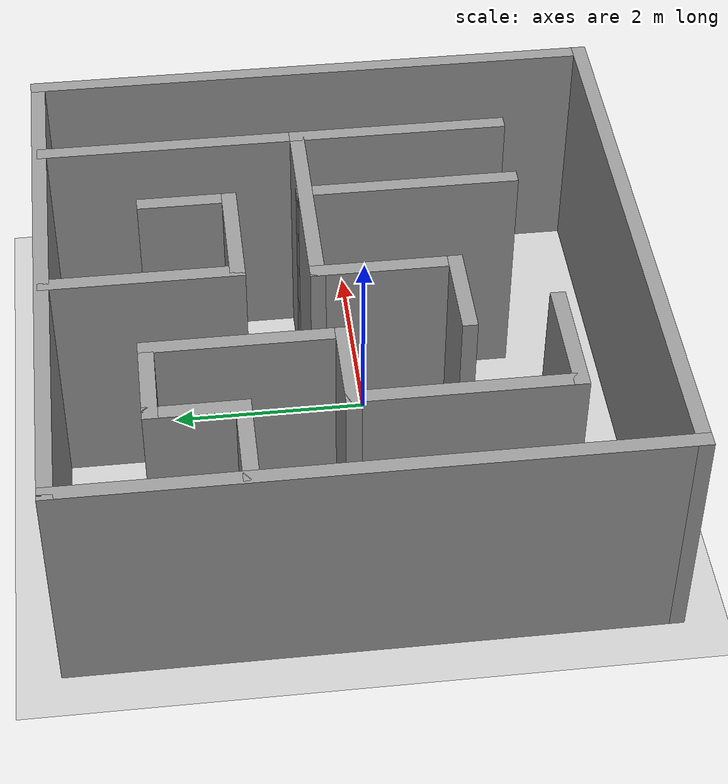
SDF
<sdf version="1.6">
 <world name="default">
  <light name="sun" type="directional">
   <pose>0 0 10 0 -0 0</pose>
   <diffuse>0.8 0.8 0.8 1</diffuse>
   <specular>0.2 0.2 0.2 1</specular>
   <attenuation>
    <range>1000</range>
    <constant>0.9</constant>
    <linear>0.01</linear>
    <quadratic>0.001</quadratic>
   </attenuation>
   <direction>-0.5 0.1 -0.9</direction>
  </light>
  <model name="ground_plane">
   <static>1</static>
   <link name="link">
    <collision name="collision">
     <geometry><plane><normal>0 0 1</normal><size>100 100</size></plane></geometry>
     <surface>
      <contact><collide_bitmask>65535</collide_bitmask></contact>
      <friction><ode><mu>100</mu><mu2>50</mu2></ode></friction>
     </surface>
    </collision>
    <visual name="visual">
     <cast_shadows>0</cast_shadows>
     <geometry><plane><normal>0 0 1</normal><size>100 100</size></plane></geometry>
     <material>
      <script><uri>file://media/materials/scripts/gazebo.material</uri><name>Gazebo/Grey</name></script>
     </material>
    </visual>
   </link>
  </model>
  <gravity>0 0 -9.8</gravity>
  <magnetic_field>6e-06 2.3e-05 -4.2e-05</magnetic_field>
  <atmosphere type="adiabatic"/>
  <physics name="default_physics" default="0" type="ode">
   <max_step_size>0.001</max_step_size>
   <real_time_factor>1</real_time_factor>
   <real_time_update_rate>1000</real_time_update_rate>
  </physics>
  <scene><ambient>0.4 0.4 0.4 1</ambient><background>0.7 0.7 0.7 1</background><shadows>1</shadows></scene>
  <audio><device>default</device></audio>
  <spherical_coordinates>
   <surface_model>EARTH_WGS84</surface_model>
   <latitude_deg>0</latitude_deg>
   <longitude_deg>0</longitude_deg>
   <elevation>0</elevation>
   <heading_deg>0</heading_deg>
  </spherical_coordinates>
  <model name="maze_2">
   <pose>-0.268498 0.259827 0 0 -0 0</pose>
   <link name="Wall_0">
    <collision name="Wall_0_Collision">
     <geometry><box><size>6 0.15 2.5</size></box></geometry>
     <pose>0 0 1.25 0 -0 0</pose>
    </collision>
    <visual name="Wall_0_Visual">
     <pose>0 0 1.25 0 -0 0</pose>
     <geometry><box><size>6 0.15 2.5</size></box></geometry>
     <material>
      <script><uri>file://media/materials/scripts/gazebo.material</uri><name>Gazebo/Grey</name></script>
      <ambient>1 1 1 1</ambient>
     </material>
     <meta><layer>0</layer></meta>
    </visual>
    <pose>-2.925 0 0 0 -0 1.5708</pose>
   </link>
   <link name="Wall_1">
    <collision name="Wall_1_Collision">
     <geometry><box><size>6 0.15 2.5</size></box></geometry>
     <pose>0 0 1.25 0 -0 0</pose>
    </collision>
    <visual name="Wall_1_Visual">
     <pose>0 0 1.25 0 -0 0</pose>
     <geometry><box><size>6 0.15 2.5</size></box></geometry>
     <material>
      <script><uri>file://media/materials/scripts/gazebo.material</uri><name>Gazebo/Grey</name></script>
      <ambient>1 1 1 1</ambient>
     </material>
     <meta><layer>0</layer></meta>
    </visual>
    <pose>0 2.925 0 0 -0 0</pose>
   </link>
   <link name="Wall_10">
    <collision name="Wall_10_Collision">
     <geometry><box><size>2 0.15 2.5</size></box></geometry>
     <pose>0 0 1.25 0 -0 0</pose>
    </collision>
    <visual name="Wall_10_Visual">
     <pose>0 0 1.25 0 -0 0</pose>
     <geometry><box><size>2 0.15 2.5</size></box></geometry>
     <material>
      <script><uri>file://media/materials/scripts/gazebo.material</uri><name>Gazebo/Grey</name></script>
      <ambient>1 1 1 1</ambient>
     </material>
     <meta><layer>0</layer></meta>
    </visual>
    <pose>-1.19718 1.04673 0 0 -0 -1.5708</pose>
   </link>
   <link name="Wall_11">
    <collision name="Wall_11_Collision">
     <geometry><box><size>1 0.15 2.5</size></box></geometry>
     <pose>0 0 1.25 0 -0 0</pose>
    </collision>
    <visual name="Wall_11_Visual">
     <pose>0 0 1.25 0 -0 0</pose>
     <geometry><box><size>1 0.15 2.5</size></box></geometry>
     <material>
      <script><uri>file://media/materials/scripts/gazebo.material</uri><name>Gazebo/Grey</name></script>
      <ambient>1 1 1 1</ambient>
     </material>
     <meta><layer>0</layer></meta>
    </visual>
    <pose>-1.62218 0.121735 0 0 -0 3.14159</pose>
   </link>
   <link name="Wall_12">
    <collision name="Wall_12_Collision">
     <geometry><box><size>2.25 0.15 2.5</size></box></geometry>
     <pose>0 0 1.25 0 -0 0</pose>
    </collision>
    <visual name="Wall_12_Visual">
     <pose>0 0 1.25 0 -0 0</pose>
     <geometry><box><size>2.25 0.15 2.5</size></box></geometry>
     <material>
      <script><uri>file://media/materials/scripts/gazebo.material</uri><name>Gazebo/Grey</name></script>
      <ambient>1 1 1 1</ambient>
     </material>
     <meta><layer>0</layer></meta>
    </visual>
    <pose>-2.04718 -0.928265 0 0 -0 -1.5708</pose>
   </link>
   <link name="Wall_13">
    <collision name="Wall_13_Collision">
     <geometry><box><size>1.25 0.15 2.5</size></box></geometry>
     <pose>0 0 1.25 0 -0 0</pose>
    </collision>
    <visual name="Wall_13_Visual">
     <pose>0 0 1.25 0 -0 0</pose>
     <geometry><box><size>1.25 0.15 2.5</size></box></geometry>
     <material>
      <script><uri>file://media/materials/scripts/gazebo.material</uri><name>Gazebo/Grey</name></script>
      <ambient>1 1 1 1</ambient>
     </material>
     <meta><layer>0</layer></meta>
    </visual>
    <pose>-1.49718 -1.97826 0 0 -0 0</pose>
   </link>
   <link name="Wall_15">
    <collision name="Wall_15_Collision">
     <geometry><box><size>2 0.15 2.5</size></box></geometry>
     <pose>0 0 1.25 0 -0 0</pose>
    </collision>
    <visual name="Wall_15_Visual">
     <pose>0 0 1.25 0 -0 0</pose>
     <geometry><box><size>2 0.15 2.5</size></box></geometry>
     <material>
      <script><uri>file://media/materials/scripts/gazebo.material</uri><name>Gazebo/Grey</name></script>
      <ambient>1 1 1 1</ambient>
     </material>
     <meta><layer>0</layer></meta>
    </visual>
    <pose>-0.221201 1.96323 0 0 -0 -1.5708</pose>
   </link>
   <link name="Wall_2">
    <collision name="Wall_2_Collision">
     <geometry><box><size>6 0.15 2.5</size></box></geometry>
     <pose>0 0 1.25 0 -0 0</pose>
    </collision>
    <visual name="Wall_2_Visual">
     <pose>0 0 1.25 0 -0 0</pose>
     <geometry><box><size>6 0.15 2.5</size></box></geometry>
     <material>
      <script><uri>file://media/materials/scripts/gazebo.material</uri><name>Gazebo/Grey</name></script>
      <ambient>1 1 1 1</ambient>
     </material>
     <meta><layer>0</layer></meta>
    </visual>
    <pose>2.925 0 0 0 -0 -1.5708</pose>
   </link>
   <link name="Wall_20">
    <collision name="Wall_20_Collision">
     <geometry><box><size>1.25 0.15 2.5</size></box></geometry>
     <pose>0 0 1.25 0 -0 0</pose>
    </collision>
    <visual name="Wall_20_Visual">
     <pose>0 0 1.25 0 -0 0</pose>
     <geometry><box><size>1.25 0.15 2.5</size></box></geometry>
     <material>
      <script><uri>file://media/materials/scripts/gazebo.material</uri><name>Gazebo/Grey</name></script>
      <ambient>1 1 1 1</ambient>
     </material>
     <meta><layer>0</layer></meta>
    </visual>
    <pose>0.328798 1.03823 0 0 -0 0</pose>
   </link>
   <link name="Wall_21">
    <collision name="Wall_21_Collision">
     <geometry><box><size>1 0.15 2.5</size></box></geometry>
     <pose>0 0 1.25 0 -0 0</pose>
    </collision>
    <visual name="Wall_21_Visual">
     <pose>0 0 1.25 0 -0 0</pose>
     <geometry><box><size>1 0.15 2.5</size></box></geometry>
     <material>
      <script><uri>file://media/materials/scripts/gazebo.material</uri><name>Gazebo/Grey</name></script>
      <ambient>1 1 1 1</ambient>
     </material>
     <meta><layer>0</layer></meta>
    </visual>
    <pose>0.878799 1.46323 0 0 -0 1.5708</pose>
   </link>
   <link name="Wall_23">
    <collision name="Wall_23_Collision">
     <geometry><box><size>2.75 0.15 2.5</size></box></geometry>
     <pose>0 0 1.25 0 -0 0</pose>
    </collision>
    <visual name="Wall_23_Visual">
     <pose>0 0 1.25 0 -0 0</pose>
     <geometry><box><size>2.75 0.15 2.5</size></box></geometry>
     <material>
      <script><uri>file://media/materials/scripts/gazebo.material</uri><name>Gazebo/Grey</name></script>
      <ambient>1 1 1 1</ambient>
     </material>
     <meta><layer>0</layer></meta>
    </visual>
    <pose>1.79016 1.57074 0 0 -0 -1.5708</pose>
   </link>
   <link name="Wall_24">
    <collision name="Wall_24_Collision">
     <geometry><box><size>2.25 0.15 2.5</size></box></geometry>
     <pose>0 0 1.25 0 -0 0</pose>
    </collision>
    <visual name="Wall_24_Visual">
     <pose>0 0 1.25 0 -0 0</pose>
     <geometry><box><size>2.25 0.15 2.5</size></box></geometry>
     <material>
      <script><uri>file://media/materials/scripts/gazebo.material</uri><name>Gazebo/Grey</name></script>
      <ambient>1 1 1 1</ambient>
     </material>
     <meta><layer>0</layer></meta>
    </visual>
    <pose>0.740156 0.270741 0 0 -0 3.14159</pose>
   </link>
   <link name="Wall_25">
    <collision name="Wall_25_Collision">
     <geometry><box><size>1.5 0.15 2.5</size></box></geometry>
     <pose>0 0 1.25 0 -0 0</pose>
    </collision>
    <visual name="Wall_25_Visual">
     <pose>0 0 1.25 0 -0 0</pose>
     <geometry><box><size>1.5 0.15 2.5</size></box></geometry>
     <material>
      <script><uri>file://media/materials/scripts/gazebo.material</uri><name>Gazebo/Grey</name></script>
      <ambient>1 1 1 1</ambient>
     </material>
     <meta><layer>0</layer></meta>
    </visual>
    <pose>-0.309844 -0.404259 0 0 -0 -1.5708</pose>
   </link>
   <link name="Wall_26">
    <collision name="Wall_26_Collision">
     <geometry><box><size>1 0.15 2.5</size></box></geometry>
     <pose>0 0 1.25 0 -0 0</pose>
    </collision>
    <visual name="Wall_26_Visual">
     <pose>0 0 1.25 0 -0 0</pose>
     <geometry><box><size>1 0.15 2.5</size></box></geometry>
     <material>
      <script><uri>file://media/materials/scripts/gazebo.material</uri><name>Gazebo/Grey</name></script>
      <ambient>1 1 1 1</ambient>
     </material>
     <meta><layer>0</layer></meta>
    </visual>
    <pose>-0.734844 -1.07926 0 0 -0 3.14159</pose>
   </link>
   <link name="Wall_28">
    <collision name="Wall_28_Collision">
     <geometry><box><size>2.25 0.15 2.5</size></box></geometry>
     <pose>0 0 1.25 0 -0 0</pose>
    </collision>
    <visual name="Wall_28_Visual">
     <pose>0 0 1.25 0 -0 0</pose>
     <geometry><box><size>2.25 0.15 2.5</size></box></geometry>
     <material>
      <script><uri>file://media/materials/scripts/gazebo.material</uri><name>Gazebo/Grey</name></script>
      <ambient>1 1 1 1</ambient>
     </material>
     <meta><layer>0</layer></meta>
    </visual>
    <pose>0.898162 -0.767788 0 0 -0 -1.5708</pose>
   </link>
   <link name="Wall_3">
    <collision name="Wall_3_Collision">
     <geometry><box><size>6 0.15 2.5</size></box></geometry>
     <pose>0 0 1.25 0 -0 0</pose>
    </collision>
    <visual name="Wall_3_Visual">
     <pose>0 0 1.25 0 -0 0</pose>
     <geometry><box><size>6 0.15 2.5</size></box></geometry>
     <material>
      <script><uri>file://media/materials/scripts/gazebo.material</uri><name>Gazebo/Grey</name></script>
      <ambient>1 1 1 1</ambient>
     </material>
     <meta><layer>0</layer></meta>
    </visual>
    <pose>0 -2.925 0 0 -0 3.14159</pose>
   </link>
   <link name="Wall_34">
    <collision name="Wall_34_Collision">
     <geometry><box><size>2.25 0.15 2.5</size></box></geometry>
     <pose>0 0 1.25 0 -0 0</pose>
    </collision>
    <visual name="Wall_34_Visual">
     <pose>0 0 1.25 0 -0 0</pose>
     <geometry><box><size>2.25 0.15 2.5</size></box></geometry>
     <material>
      <script><uri>file://media/materials/scripts/gazebo.material</uri><name>Gazebo/Grey</name></script>
      <ambient>1 1 1 1</ambient>
     </material>
     <meta><layer>0</layer></meta>
    </visual>
    <pose>1.79016 -0.779259 0 0 -0 -1.5708</pose>
   </link>
   <link name="Wall_7">
    <collision name="Wall_7_Collision">
     <geometry><box><size>1 0.15 2.5</size></box></geometry>
     <pose>0 0 1.25 0 -0 0</pose>
    </collision>
    <visual name="Wall_7_Visual">
     <pose>0 0 1.25 0 -0 0</pose>
     <geometry><box><size>1 0.15 2.5</size></box></geometry>
     <material>
      <script><uri>file://media/materials/scripts/gazebo.material</uri><name>Gazebo/Grey</name></script>
      <ambient>1 1 1 1</ambient>
     </material>
     <meta><layer>0</layer></meta>
    </visual>
    <pose>-2.47218 1.12173 0 0 -0 0</pose>
   </link>
   <link name="Wall_8">
    <collision name="Wall_8_Collision">
     <geometry><box><size>1 0.15 2.5</size></box></geometry>
     <pose>0 0 1.25 0 -0 0</pose>
    </collision>
    <visual name="Wall_8_Visual">
     <pose>0 0 1.25 0 -0 0</pose>
     <geometry><box><size>1 0.15 2.5</size></box></geometry>
     <material>
      <script><uri>file://media/materials/scripts/gazebo.material</uri><name>Gazebo/Grey</name></script>
      <ambient>1 1 1 1</ambient>
     </material>
     <meta><layer>0</layer></meta>
    </visual>
    <pose>-2.04718 1.54673 0 0 -0 1.5708</pose>
   </link>
   <link name="Wall_9">
    <collision name="Wall_9_Collision">
     <geometry><box><size>1 0.15 2.5</size></box></geometry>
     <pose>0 0 1.25 0 -0 0</pose>
    </collision>
    <visual name="Wall_9_Visual">
     <pose>0 0 1.25 0 -0 0</pose>
     <geometry><box><size>1 0.15 2.5</size></box></geometry>
     <material>
      <script><uri>file://media/materials/scripts/gazebo.material</uri><name>Gazebo/Grey</name></script>
      <ambient>1 1 1 1</ambient>
     </material>
     <meta><layer>0</layer></meta>
    </visual>
    <pose>-1.62218 1.97174 0 0 -0 0</pose>
   </link>
   <static>1</static>
  </model>
  <model name="Sphere_radius_15cm">
   <link name="link">
    <inertial>
     <mass>1</mass>
     <inertia><ixx>0.1</ixx><ixy>0</ixy><ixz>0</ixz><iyy>0.1</iyy><iyz>0</iyz><izz>0.1</izz></inertia>
    </inertial>
    <visual name="visual">
     <geometry><sphere><radius>0.15</radius></sphere></geometry>
     <material>
      <script><name>Gazebo/Grey</name><uri>file://media/materials/scripts/gazebo.material</uri></script>
      <shader type="vertex"><normal_map>__default__</normal_map></shader>
      <ambient>0.3 0.3 0.3 1</ambient>
      <diffuse>0.7 0.7 0.7 1</diffuse>
      <specular>0.01 0.01 0.01 1</specular>
      <emissive>0 0 0 1</emissive>
     </material>
    </visual>
    <collision name="collision">
     <geometry><sphere><radius>0.15</radius></sphere></geometry>
     <surface>
      <friction>
       <ode><mu>1</mu><mu2>1</mu2><fdir1>0 0 0</fdir1><slip1>0</slip1><slip2>0</slip2></ode>
       <torsional>
        <coefficient>1</coefficient>
        <patch_radius>0</patch_radius>
        <surface_radius>0</surface_radius>
        <use_patch_radius>1</use_patch_radius>
        <ode><slip>0</slip></ode>
       </torsional>
      </friction>
      <bounce><restitution_coefficient>0</restitution_coefficient><threshold>1e+06</threshold></bounce>
      <contact>
       <collide_without_contact>0</collide_without_contact>
       <collide_without_contact_bitmask>1</collide_without_contact_bitmask>
       <collide_bitmask>1</collide_bitmask>
       <ode>
        <soft_cfm>0</soft_cfm>
        <soft_erp>0.2</soft_erp>
        <kp>1e+13</kp>
        <kd>1</kd>
        <max_vel>0.01</max_vel>
        <min_depth>0</min_depth>
       </ode>
       <bullet>
        <split_impulse>1</split_impulse>
        <split_impulse_penetration_threshold>-0.01</split_impulse_penetration_threshold>
        <soft_cfm>0</soft_cfm>
        <soft_erp>0.2</soft_erp>
        <kp>1e+13</kp>
        <kd>1</kd>
       </bullet>
      </contact>
     </surface>
    </collision>
   </link>
   <static>0</static>
   <pose>-2.85378 1.86654 0.15 0 -0 0</pose>
  </model>
  <model name="Sphere_radius_15cm_0">
   <link name="link">
    <inertial>
     <mass>1</mass>
     <inertia><ixx>0.1</ixx><ixy>0</ixy><ixz>0</ixz><iyy>0.1</iyy><iyz>0</iyz><izz>0.1</izz></inertia>
    </inertial>
    <visual name="visual">
     <geometry><sphere><radius>0.15</radius></sphere></geometry>
     <material>
      <script><name>Gazebo/Grey</name><uri>file://media/materials/scripts/gazebo.material</uri></script>
      <shader type="vertex"><normal_map>__default__</normal_map></shader>
      <ambient>0.3 0.3 0.3 1</ambient>
      <diffuse>0.7 0.7 0.7 1</diffuse>
      <specular>0.01 0.01 0.01 1</specular>
      <emissive>0 0 0 1</emissive>
     </material>
    </visual>
    <collision name="collision">
     <geometry><sphere><radius>0.15</radius></sphere></geometry>
     <surface>
      <friction>
       <ode><mu>1</mu><mu2>1</mu2><fdir1>0 0 0</fdir1><slip1>0</slip1><slip2>0</slip2></ode>
       <torsional>
        <coefficient>1</coefficient>
        <patch_radius>0</patch_radius>
        <surface_radius>0</surface_radius>
        <use_patch_radius>1</use_patch_radius>
        <ode><slip>0</slip></ode>
       </torsional>
      </friction>
      <bounce><restitution_coefficient>0</restitution_coefficient><threshold>1e+06</threshold></bounce>
      <contact>
       <collide_without_contact>0</collide_without_contact>
       <collide_without_contact_bitmask>1</collide_without_contact_bitmask>
       <collide_bitmask>1</collide_bitmask>
       <ode>
        <soft_cfm>0</soft_cfm>
        <soft_erp>0.2</soft_erp>
        <kp>1e+13</kp>
        <kd>1</kd>
        <max_vel>0.01</max_vel>
        <min_depth>0</min_depth>
       </ode>
       <bullet>
        <split_impulse>1</split_impulse>
        <split_impulse_penetration_threshold>-0.01</split_impulse_penetration_threshold>
        <soft_cfm>0</soft_cfm>
        <soft_erp>0.2</soft_erp>
        <kp>1e+13</kp>
        <kd>1</kd>
       </bullet>
      </contact>
     </surface>
    </collision>
   </link>
   <static>0</static>
   <pose>2.30813 2.73262 0.15 0 -0 0</pose>
  </model>
 </world>
</sdf>
